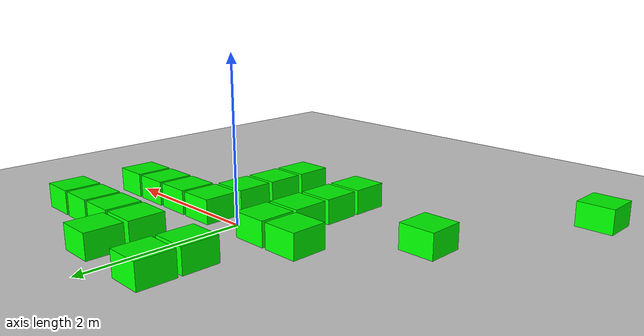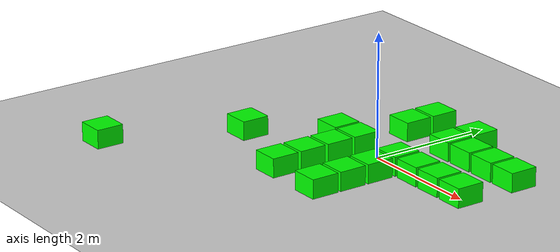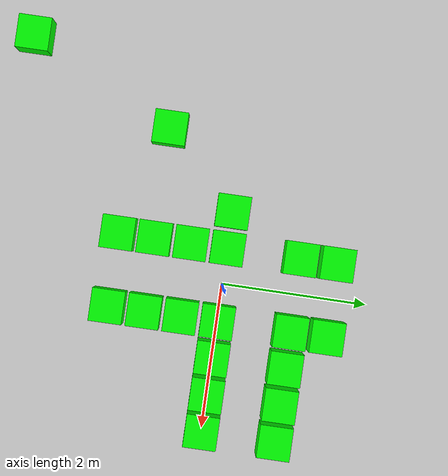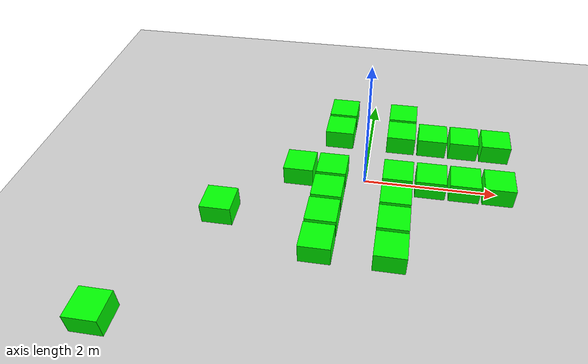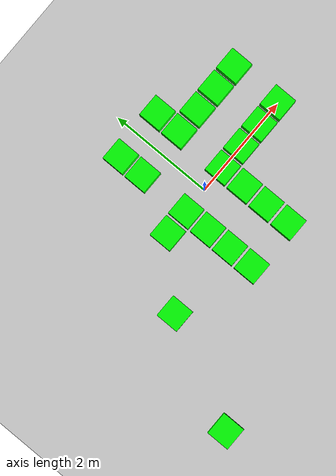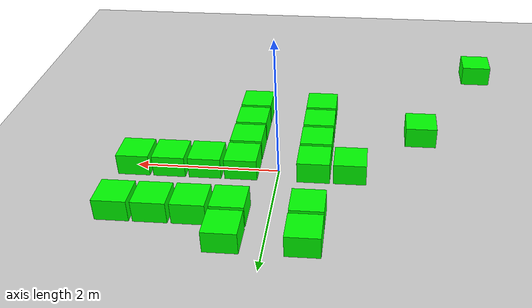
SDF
<?xml version="1.0" ?>

<sdf version="1.6">
  <world name="default">

    <include>
      <uri>model://sun</uri>
    </include>
    <include>
      <uri>model://ground_plane</uri>
    </include>

    <!-- Box Obstacle 1 -->
    <model name="box_obstacle1">
      <static>true</static>
      <pose>1 0 0 0 0 0</pose> <!-- Set the pose (position and orientation) of the box -->
      <link name="link">
        <collision name="collision">
          <geometry>
            <box>
              <size>0.45 0.45 0.6</size> <!-- Set the size of the box -->
            </box>
          </geometry>
        </collision>
        <visual name="visual">
          <geometry>
            <box>
              <size>0.45 0.45 0.6</size> <!-- Set the size of the box -->
            </box>
          </geometry>
          <material>
            <ambient>0 1 0 1</ambient> <!-- Set the ambient color to green (RGBA) -->
            <diffuse>0 1 0 1</diffuse> <!-- Set the diffuse color to green (RGBA) -->
            <specular>0.7 0.7 0.7 1</specular> <!-- Set the specular color to light gray (RGBA) -->
            <emissive>0 0 0 1</emissive> <!-- Set the emissive color to black (RGBA) -->
          </material>
        </visual>
      </link>
    </model>

    <!-- Box Obstacle 2 -->
    <model name="box_obstacle2">
      <static>true</static>
      <pose>1.5 0 0 0 0 0</pose> <!-- Set the pose (position and orientation) of the box -->
      <link name="link">
        <collision name="collision">
          <geometry>
            <box>
              <size>0.45 0.45 0.6</size> <!-- Set the size of the box -->
            </box>
          </geometry>
        </collision>
        <visual name="visual">
          <geometry>
            <box>
              <size>0.45 0.45 0.6</size> <!-- Set the size of the box -->
            </box>
          </geometry>
          <material>
            <ambient>0 1 0 1</ambient> <!-- Set the ambient color to green (RGBA) -->
            <diffuse>0 1 0 1</diffuse> <!-- Set the diffuse color to green (RGBA) -->
            <specular>0.7 0.7 0.7 1</specular> <!-- Set the specular color to light gray (RGBA) -->
            <emissive>0 0 0 1</emissive> <!-- Set the emissive color to black (RGBA) -->
          </material>
        </visual>
      </link>
    </model>

    <!-- Box Obstacle 3 -->
    <model name="box_obstacle3">
      <static>true</static>
      <pose>2 0 0 0 0 0</pose> <!-- Set the pose (position and orientation) of the box -->
      <link name="link">
        <collision name="collision">
          <geometry>
            <box>
              <size>0.45 0.45 0.6</size> <!-- Set the size of the box -->
            </box>
          </geometry>
        </collision>
        <visual name="visual">
          <geometry>
            <box>
              <size>0.45 0.45 0.6</size> <!-- Set the size of the box -->
            </box>
          </geometry>
          <material>
            <ambient>0 1 0 1</ambient> <!-- Set the ambient color to green (RGBA) -->
            <diffuse>0 1 0 1</diffuse> <!-- Set the diffuse color to green (RGBA) -->
            <specular>0.7 0.7 0.7 1</specular> <!-- Set the specular color to light gray (RGBA) -->
            <emissive>0 0 0 1</emissive> <!-- Set the emissive color to black (RGBA) -->
          </material>
        </visual>
      </link>
    </model>

    <!-- Box Obstacle 4 -->
    <model name="box_obstacle4">
      <static>true</static>
      <pose>1 1 0 0 0 0</pose> <!-- Set the pose (position and orientation) of the box -->
      <link name="link">
        <collision name="collision">
          <geometry>
            <box>
              <size>0.45 0.45 0.6</size> <!-- Set the size of the box -->
            </box>
          </geometry>
        </collision>
        <visual name="visual">
          <geometry>
            <box>
              <size>0.45 0.45 0.6</size> <!-- Set the size of the box -->
            </box>
          </geometry>
          <material>
            <ambient>0 1 0 1</ambient> <!-- Set the ambient color to green (RGBA) -->
            <diffuse>0 1 0 1</diffuse> <!-- Set the diffuse color to green (RGBA) -->
            <specular>0.7 0.7 0.7 1</specular> <!-- Set the specular color to light gray (RGBA) -->
            <emissive>0 0 0 1</emissive> <!-- Set the emissive color to black (RGBA) -->
          </material>
        </visual>
      </link>
    </model>

    <!-- Box Obstacle 5 -->
    <model name="box_obstacle5">
      <static>true</static>
      <pose>1.5 1 0 0 0 0</pose> <!-- Set the pose (position and orientation) of the box -->
      <link name="link">
        <collision name="collision">
          <geometry>
            <box>
              <size>0.45 0.45 0.6</size> <!-- Set the size of the box -->
            </box>
          </geometry>
        </collision>
        <visual name="visual">
          <geometry>
            <box>
              <size>0.45 0.45 0.6</size> <!-- Set the size of the box -->
            </box>
          </geometry>
          <material>
            <ambient>0 1 0 1</ambient> <!-- Set the ambient color to green (RGBA) -->
            <diffuse>0 1 0 1</diffuse> <!-- Set the diffuse color to green (RGBA) -->
            <specular>0.7 0.7 0.7 1</specular> <!-- Set the specular color to light gray (RGBA) -->
            <emissive>0 0 0 1</emissive> <!-- Set the emissive color to black (RGBA) -->
          </material>
        </visual>
      </link>
    </model>

    <!-- Box Obstacle 6 -->
    <model name="box_obstacle6">
      <static>true</static>
      <pose>2 1 0 0 0 0</pose> <!-- Set the pose (position and orientation) of the box -->
      <link name="link">
        <collision name="collision">
          <geometry>
            <box>
              <size>0.45 0.45 0.6</size> <!-- Set the size of the box -->
            </box>
          </geometry>
        </collision>
        <visual name="visual">
          <geometry>
            <box>
              <size>0.45 0.45 0.6</size> <!-- Set the size of the box -->
            </box>
          </geometry>
          <material>
            <ambient>0 1 0 1</ambient> <!-- Set the ambient color to green (RGBA) -->
            <diffuse>0 1 0 1</diffuse> <!-- Set the diffuse color to green (RGBA) -->
            <specular>0.7 0.7 0.7 1</specular> <!-- Set the specular color to light gray (RGBA) -->
            <emissive>0 0 0 1</emissive> <!-- Set the emissive color to black (RGBA) -->
          </material>
        </visual>
      </link>
    </model>

    <!-- Box Obstacle 7 -->
    <model name="box_obstacle7">
      <static>true</static>
      <pose>-2 -1 0 0 0 0</pose> <!-- Set the pose (position and orientation) of the box -->
      <link name="link">
        <collision name="collision">
          <geometry>
            <box>
              <size>0.45 0.45 0.6</size> <!-- Set the size of the box -->
            </box>
          </geometry>
        </collision>
        <visual name="visual">
          <geometry>
            <box>
              <size>0.45 0.45 0.6</size> <!-- Set the size of the box -->
            </box>
          </geometry>
          <material>
            <ambient>0 1 0 1</ambient> <!-- Set the ambient color to green (RGBA) -->
            <diffuse>0 1 0 1</diffuse> <!-- Set the diffuse color to green (RGBA) -->
            <specular>0.7 0.7 0.7 1</specular> <!-- Set the specular color to light gray (RGBA) -->
            <emissive>0 0 0 1</emissive> <!-- Set the emissive color to black (RGBA) -->
          </material>
        </visual>
      </link>
    </model>

    <!-- Box Obstacle 8 -->
    <model name="box_obstacle8">
      <static>true</static>
      <pose>-3 -3 0 0 0 0</pose> <!-- Set the pose (position and orientation) of the box -->
      <link name="link">
        <collision name="collision">
          <geometry>
            <box>
              <size>0.45 0.45 0.6</size> <!-- Set the size of the box -->
            </box>
          </geometry>
        </collision>
        <visual name="visual">
          <geometry>
            <box>
              <size>0.45 0.45 0.6</size> <!-- Set the size of the box -->
            </box>
          </geometry>
          <material>
            <ambient>0 1 0 1</ambient> <!-- Set the ambient color to green (RGBA) -->
            <diffuse>0 1 0 1</diffuse> <!-- Set the diffuse color to green (RGBA) -->
            <specular>0.7 0.7 0.7 1</specular> <!-- Set the specular color to light gray (RGBA) -->
            <emissive>0 0 0 1</emissive> <!-- Set the emissive color to black (RGBA) -->
          </material>
        </visual>
      </link>
    </model>

    <!-- Box Obstacle 9 -->
    <model name="box_obstacle9">
      <static>true</static>
      <pose>0.5 -0.5 0 0 0 0</pose> <!-- Set the pose (position and orientation) of the box -->
      <link name="link">
        <collision name="collision">
          <geometry>
            <box>
              <size>0.45 0.45 0.6</size> <!-- Set the size of the box -->
            </box>
          </geometry>
        </collision>
        <visual name="visual">
          <geometry>
            <box>
              <size>0.45 0.45 0.6</size> <!-- Set the size of the box -->
            </box>
          </geometry>
          <material>
            <ambient>0 1 0 1</ambient> <!-- Set the ambient color to green (RGBA) -->
            <diffuse>0 1 0 1</diffuse> <!-- Set the diffuse color to green (RGBA) -->
            <specular>0.7 0.7 0.7 1</specular> <!-- Set the specular color to light gray (RGBA) -->
            <emissive>0 0 0 1</emissive> <!-- Set the emissive color to black (RGBA) -->
          </material>
        </visual>
      </link>
    </model>

    <!-- Box Obstacle 10 -->
    <model name="box_obstacle10">
      <static>true</static>
      <pose>0.5 -1 0 0 0 0</pose> <!-- Set the pose (position and orientation) of the box -->
      <link name="link">
        <collision name="collision">
          <geometry>
            <box>
              <size>0.45 0.45 0.6</size> <!-- Set the size of the box -->
            </box>
          </geometry>
        </collision>
        <visual name="visual">
          <geometry>
            <box>
              <size>0.45 0.45 0.6</size> <!-- Set the size of the box -->
            </box>
          </geometry>
          <material>
            <ambient>0 1 0 1</ambient> <!-- Set the ambient color to green (RGBA) -->
            <diffuse>0 1 0 1</diffuse> <!-- Set the diffuse color to green (RGBA) -->
            <specular>0.7 0.7 0.7 1</specular> <!-- Set the specular color to light gray (RGBA) -->
            <emissive>0 0 0 1</emissive> <!-- Set the emissive color to black (RGBA) -->
          </material>
        </visual>
      </link>
    </model>

    <!-- Box Obstacle 11 -->
    <model name="box_obstacle11">
      <static>true</static>
      <pose>0.5 -1.5 0 0 0 0</pose> <!-- Set the pose (position and orientation) of the box -->
      <link name="link">
        <collision name="collision">
          <geometry>
            <box>
              <size>0.45 0.45 0.6</size> <!-- Set the size of the box -->
            </box>
          </geometry>
        </collision>
        <visual name="visual">
          <geometry>
            <box>
              <size>0.45 0.45 0.6</size> <!-- Set the size of the box -->
            </box>
          </geometry>
          <material>
            <ambient>0 1 0 1</ambient> <!-- Set the ambient color to green (RGBA) -->
            <diffuse>0 1 0 1</diffuse> <!-- Set the diffuse color to green (RGBA) -->
            <specular>0.7 0.7 0.7 1</specular> <!-- Set the specular color to light gray (RGBA) -->
            <emissive>0 0 0 1</emissive> <!-- Set the emissive color to black (RGBA) -->
          </material>
        </visual>
      </link>
    </model>

    <!-- Box Obstacle 12 -->
    <model name="box_obstacle12">
      <static>true</static>
      <pose>-0.5 -0.5 0 0 0 0</pose> <!-- Set the pose (position and orientation) of the box -->
      <link name="link">
        <collision name="collision">
          <geometry>
            <box>
              <size>0.45 0.45 0.6</size> <!-- Set the size of the box -->
            </box>
          </geometry>
        </collision>
        <visual name="visual">
          <geometry>
            <box>
              <size>0.45 0.45 0.6</size> <!-- Set the size of the box -->
            </box>
          </geometry>
          <material>
            <ambient>0 1 0 1</ambient> <!-- Set the ambient color to green (RGBA) -->
            <diffuse>0 1 0 1</diffuse> <!-- Set the diffuse color to green (RGBA) -->
            <specular>0.7 0.7 0.7 1</specular> <!-- Set the specular color to light gray (RGBA) -->
            <emissive>0 0 0 1</emissive> <!-- Set the emissive color to black (RGBA) -->
          </material>
        </visual>
      </link>
    </model>

    <!-- Box Obstacle 13 -->
    <model name="box_obstacle13">
      <static>true</static>
      <pose>-0.5 -1 0 0 0 0</pose> <!-- Set the pose (position and orientation) of the box -->
      <link name="link">
        <collision name="collision">
          <geometry>
            <box>
              <size>0.45 0.45 0.6</size> <!-- Set the size of the box -->
            </box>
          </geometry>
        </collision>
        <visual name="visual">
          <geometry>
            <box>
              <size>0.45 0.45 0.6</size> <!-- Set the size of the box -->
            </box>
          </geometry>
          <material>
            <ambient>0 1 0 1</ambient> <!-- Set the ambient color to green (RGBA) -->
            <diffuse>0 1 0 1</diffuse> <!-- Set the diffuse color to green (RGBA) -->
            <specular>0.7 0.7 0.7 1</specular> <!-- Set the specular color to light gray (RGBA) -->
            <emissive>0 0 0 1</emissive> <!-- Set the emissive color to black (RGBA) -->
          </material>
        </visual>
      </link>
    </model>

    <!-- Box Obstacle 14 -->
    <model name="box_obstacle14">
      <static>true</static>
      <pose>-0.5 -1.5 0 0 0 0</pose> <!-- Set the pose (position and orientation) of the box -->
      <link name="link">
        <collision name="collision">
          <geometry>
            <box>
              <size>0.45 0.45 0.6</size> <!-- Set the size of the box -->
            </box>
          </geometry>
        </collision>
        <visual name="visual">
          <geometry>
            <box>
              <size>0.45 0.45 0.6</size> <!-- Set the size of the box -->
            </box>
          </geometry>
          <material>
            <ambient>0 1 0 1</ambient> <!-- Set the ambient color to green (RGBA) -->
            <diffuse>0 1 0 1</diffuse> <!-- Set the diffuse color to green (RGBA) -->
            <specular>0.7 0.7 0.7 1</specular> <!-- Set the specular color to light gray (RGBA) -->
            <emissive>0 0 0 1</emissive> <!-- Set the emissive color to black (RGBA) -->
          </material>
        </visual>
      </link>
    </model>

    <!-- Box Obstacle 15 -->
    <model name="box_obstacle15">
      <static>true</static>
      <pose>0.5 0 0 0 0 0</pose> <!-- Set the pose (position and orientation) of the box -->
      <link name="link">
        <collision name="collision">
          <geometry>
            <box>
              <size>0.45 0.45 0.6</size> <!-- Set the size of the box -->
            </box>
          </geometry>
        </collision>
        <visual name="visual">
          <geometry>
            <box>
              <size>0.45 0.45 0.6</size> <!-- Set the size of the box -->
            </box>
          </geometry>
          <material>
            <ambient>0 1 0 1</ambient> <!-- Set the ambient color to green (RGBA) -->
            <diffuse>0 1 0 1</diffuse> <!-- Set the diffuse color to green (RGBA) -->
            <specular>0.7 0.7 0.7 1</specular> <!-- Set the specular color to light gray (RGBA) -->
            <emissive>0 0 0 1</emissive> <!-- Set the emissive color to black (RGBA) -->
          </material>
        </visual>
      </link>
    </model>

    <!-- Box Obstacle 16 -->
    <model name="box_obstacle16">
      <static>true</static>
      <pose>0.5 1 0 0 0 0</pose> <!-- Set the pose (position and orientation) of the box -->
      <link name="link">
        <collision name="collision">
          <geometry>
            <box>
              <size>0.45 0.45 0.6</size> <!-- Set the size of the box -->
            </box>
          </geometry>
        </collision>
        <visual name="visual">
          <geometry>
            <box>
              <size>0.45 0.45 0.6</size> <!-- Set the size of the box -->
            </box>
          </geometry>
          <material>
            <ambient>0 1 0 1</ambient> <!-- Set the ambient color to green (RGBA) -->
            <diffuse>0 1 0 1</diffuse> <!-- Set the diffuse color to green (RGBA) -->
            <specular>0.7 0.7 0.7 1</specular> <!-- Set the specular color to light gray (RGBA) -->
            <emissive>0 0 0 1</emissive> <!-- Set the emissive color to black (RGBA) -->
          </material>
        </visual>
      </link>
    </model>

    <!-- Box Obstacle 17 -->
    <model name="box_obstacle17">
      <static>true</static>
      <pose>0.5 1.5 0 0 0 0</pose> <!-- Set the pose (position and orientation) of the box -->
      <link name="link">
        <collision name="collision">
          <geometry>
            <box>
              <size>0.45 0.45 0.6</size> <!-- Set the size of the box -->
            </box>
          </geometry>
        </collision>
        <visual name="visual">
          <geometry>
            <box>
              <size>0.45 0.45 0.6</size> <!-- Set the size of the box -->
            </box>
          </geometry>
          <material>
            <ambient>0 1 0 1</ambient> <!-- Set the ambient color to green (RGBA) -->
            <diffuse>0 1 0 1</diffuse> <!-- Set the diffuse color to green (RGBA) -->
            <specular>0.7 0.7 0.7 1</specular> <!-- Set the specular color to light gray (RGBA) -->
            <emissive>0 0 0 1</emissive> <!-- Set the emissive color to black (RGBA) -->
          </material>
        </visual>
      </link>
    </model>

    <!-- Box Obstacle 18 -->
    <model name="box_obstacle18">
      <static>true</static>
      <pose>-0.5 1.5 0 0 0 0</pose> <!-- Set the pose (position and orientation) of the box -->
      <link name="link">
        <collision name="collision">
          <geometry>
            <box>
              <size>0.45 0.45 0.6</size> <!-- Set the size of the box -->
            </box>
          </geometry>
        </collision>
        <visual name="visual">
          <geometry>
            <box>
              <size>0.45 0.45 0.6</size> <!-- Set the size of the box -->
            </box>
          </geometry>
          <material>
            <ambient>0 1 0 1</ambient> <!-- Set the ambient color to green (RGBA) -->
            <diffuse>0 1 0 1</diffuse> <!-- Set the diffuse color to green (RGBA) -->
            <specular>0.7 0.7 0.7 1</specular> <!-- Set the specular color to light gray (RGBA) -->
            <emissive>0 0 0 1</emissive> <!-- Set the emissive color to black (RGBA) -->
          </material>
        </visual>
      </link>
    </model>

    <!-- Box Obstacle 19 -->
    <model name="box_obstacle19">
      <static>true</static>
      <pose>-0.5 1 0 0 0 0</pose> <!-- Set the pose (position and orientation) of the box -->
      <link name="link">
        <collision name="collision">
          <geometry>
            <box>
              <size>0.45 0.45 0.6</size> <!-- Set the size of the box -->
            </box>
          </geometry>
        </collision>
        <visual name="visual">
          <geometry>
            <box>
              <size>0.45 0.45 0.6</size> <!-- Set the size of the box -->
            </box>
          </geometry>
          <material>
            <ambient>0 1 0 1</ambient> <!-- Set the ambient color to green (RGBA) -->
            <diffuse>0 1 0 1</diffuse> <!-- Set the diffuse color to green (RGBA) -->
            <specular>0.7 0.7 0.7 1</specular> <!-- Set the specular color to light gray (RGBA) -->
            <emissive>0 0 0 1</emissive> <!-- Set the emissive color to black (RGBA) -->
          </material>
        </visual>
      </link>
    </model>

    <!-- Box Obstacle 20 -->
    <model name="box_obstacle20">
      <static>true</static>
      <pose>-0.5 0 0 0 0 0</pose> <!-- Set the pose (position and orientation) of the box -->
      <link name="link">
        <collision name="collision">
          <geometry>
            <box>
              <size>0.45 0.45 0.6</size> <!-- Set the size of the box -->
            </box>
          </geometry>
        </collision>
        <visual name="visual">
          <geometry>
            <box>
              <size>0.45 0.45 0.6</size> <!-- Set the size of the box -->
            </box>
          </geometry>
          <material>
            <ambient>0 1 0 1</ambient> <!-- Set the ambient color to green (RGBA) -->
            <diffuse>0 1 0 1</diffuse> <!-- Set the diffuse color to green (RGBA) -->
            <specular>0.7 0.7 0.7 1</specular> <!-- Set the specular color to light gray (RGBA) -->
            <emissive>0 0 0 1</emissive> <!-- Set the emissive color to black (RGBA) -->
          </material>
        </visual>
      </link>
    </model>

    <!-- Box Obstacle 21 -->
    <model name="box_obstacle21">
      <static>true</static>
      <pose>-1 0 0 0 0 0</pose> <!-- Set the pose (position and orientation) of the box -->
      <link name="link">
        <collision name="collision">
          <geometry>
            <box>
              <size>0.45 0.45 0.6</size> <!-- Set the size of the box -->
            </box>
          </geometry>
        </collision>
        <visual name="visual">
          <geometry>
            <box>
              <size>0.45 0.45 0.6</size> <!-- Set the size of the box -->
            </box>
          </geometry>
          <material>
            <ambient>0 1 0 1</ambient> <!-- Set the ambient color to green (RGBA) -->
            <diffuse>0 1 0 1</diffuse> <!-- Set the diffuse color to green (RGBA) -->
            <specular>0.7 0.7 0.7 1</specular> <!-- Set the specular color to light gray (RGBA) -->
            <emissive>0 0 0 1</emissive> <!-- Set the emissive color to black (RGBA) -->
          </material>
        </visual>
      </link>
    </model>

  </world>
</sdf>
